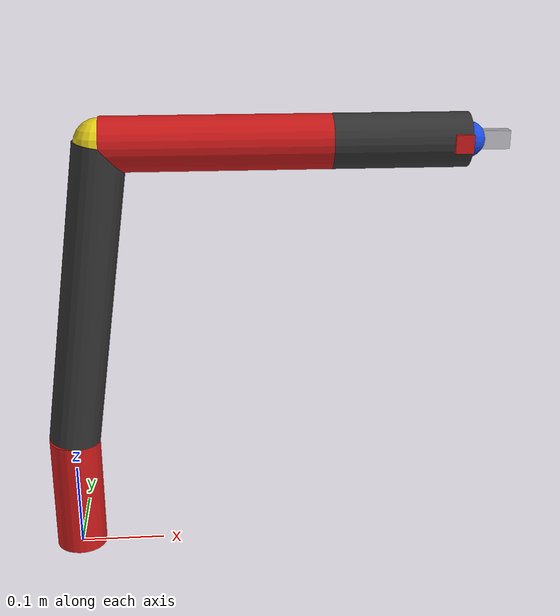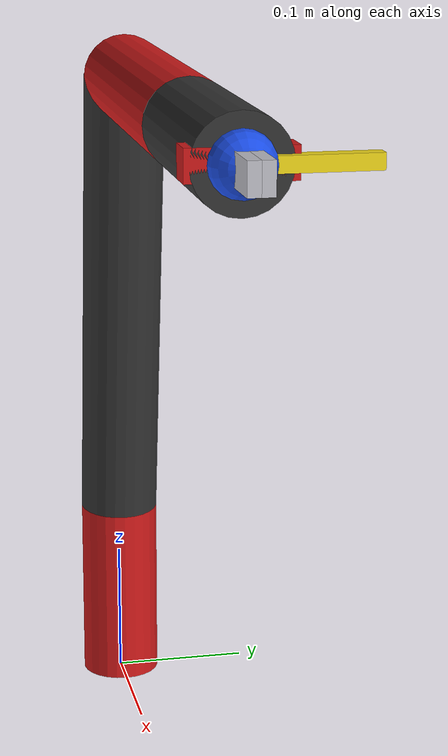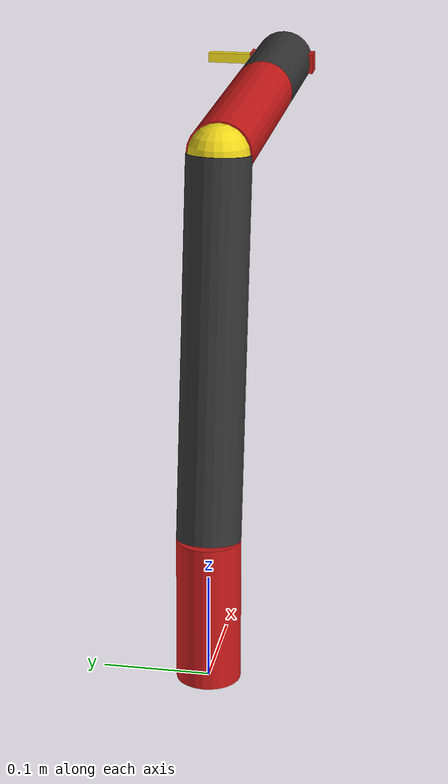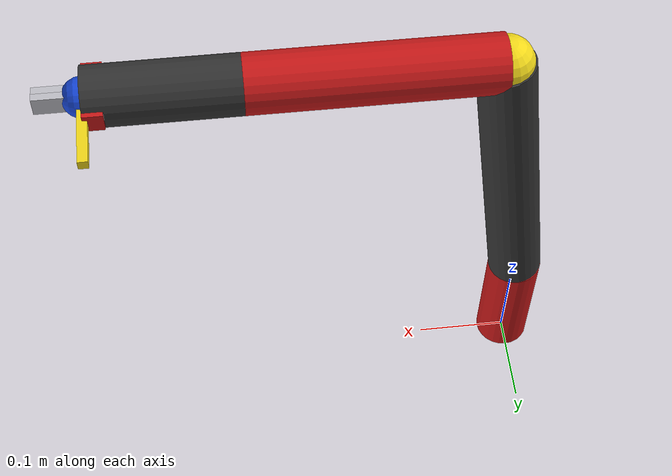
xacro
<?xml version="1.0"?>
<robot xmlns:xacro="http://www.ros.org/wiki/xacro" name="qarm">

    <xacro:property name="L1" value="0.14" />   <!-- base (ground) to shoulder axis -->
    <xacro:property name="L2" value="0.35" />   <!-- upper arm, ALONG the shoulder axis direction -->
    <xacro:property name="L3" value="0.05" />   <!-- upper arm, PERPENDICULAR (the elbow kink) -->
    <xacro:property name="L4" value="0.25" />   <!-- forearm: elbow axis to wrist axis -->
    <xacro:property name="L5" value="0.15" />   <!-- wrist axis to end_effector reference point -->

    <xacro:property name="L_gripper" value="0.046447" />

    <xacro:property name="finger_travel"       value="0.02" />
    <xacro:property name="finger_thickness"    value="0.008" />
    <xacro:property name="finger_width"        value="0.02" />
    <xacro:property name="gripper_stroke_time" value="1.0" />

    <xacro:property name="lambda_1" value="${L1}" />                  <!-- base -> shoulder axis -->
    <xacro:property name="lambda_2" value="${sqrt(L2*L2 + L3*L3)}" /> <!-- shoulder -> elbow axis -->
    <xacro:property name="lambda_3" value="${L4}" />                  <!-- elbow -> wrist axis -->
    <xacro:property name="lambda_4" value="${L5}" />                  <!-- wrist -> end_effector -->
    <xacro:property name="beta"     value="${atan2(L3, L2)}" />

    <xacro:property name="deg" value="${pi / 180.0}" />

    <xacro:property name="q1_min" value="${-170 * deg}" />
    <xacro:property name="q1_max" value="${ 170 * deg}" />
    <xacro:property name="q2_min" value="${ -85 * deg}" />
    <xacro:property name="q2_max" value="${  85 * deg}" />
    <xacro:property name="q3_min" value="${ -95 * deg}" />
    <xacro:property name="q3_max" value="${  75 * deg}" />
    <xacro:property name="q4_min" value="${-160 * deg}" />
    <xacro:property name="q4_max" value="${ 160 * deg}" />

    <xacro:property name="vel_max"    value="${90 * deg}" />  <!-- pi/2 rad/s, Table 7 -->
    <xacro:property name="effort_max" value="10.0" />         <!-- placeholder, not from datasheet -->

    <!-- Cosmetic cylinder radius for arm links (does not affect kinematics) -->
    <xacro:property name="link_radius" value="0.03" />

    <!-- ============================================================
         MATERIALS
         ============================================================ -->
    <material name="dark_gray"><color rgba="0.2 0.2 0.2 1.0"/></material>
    <material name="red">      <color rgba="0.8 0.1 0.1 1.0"/></material>
    <material name="blue">     <color rgba="0.1 0.3 0.9 1.0"/></material>
    <material name="yellow">   <color rgba="0.95 0.85 0.1 1.0"/></material>
    <material name="silver">   <color rgba="0.75 0.75 0.78 1.0"/></material>

    <link name="base_link"/>

    <link name="link_1">
        <visual>
            <geometry><cylinder radius="${link_radius}" length="${L1}"/></geometry>
            <origin xyz="0 0 ${L1/2}" rpy="0 0 0"/>
            <material name="red"/>
        </visual>
    </link>

    <joint name="joint_1" type="revolute">
        <parent link="base_link"/>
        <child  link="link_1"/>
        <origin xyz="0 0 0" rpy="0 0 0"/>
        <axis xyz="0 0 1"/>
        <limit lower="${q1_min}" upper="${q1_max}"
               effort="${effort_max}" velocity="${vel_max}"/>
    </joint>

    <link name="link_2">
        <visual>
            <geometry><cylinder radius="${link_radius}" length="${lambda_2}"/></geometry>
            <origin xyz="${L3/2} 0 ${L2/2}" rpy="0 ${beta} 0"/>
            <material name="dark_gray"/>
        </visual>
        <!-- Marker at the elbow so the kink is visible -->
        <visual>
            <geometry><sphere radius="${link_radius * 0.95}"/></geometry>
            <origin xyz="${L3} 0 ${L2}" rpy="0 0 0"/>
            <material name="yellow"/>
        </visual>
    </link>

    <joint name="joint_2" type="revolute">
        <parent link="link_1"/>
        <child  link="link_2"/>
        <origin xyz="0 0 ${L1}" rpy="0 0 0"/>
        <axis xyz="0 1 0"/>
        <limit lower="${q2_min}" upper="${q2_max}"
               effort="${effort_max}" velocity="${vel_max}"/>
    </joint>

    <link name="link_3">
        <visual>
            <geometry><cylinder radius="${link_radius}" length="${L4}"/></geometry>
            <origin xyz="0 0 ${L4/2}" rpy="0 0 0"/>
            <material name="red"/>
        </visual>
    </link>

    <joint name="joint_3" type="revolute">
        <parent link="link_2"/>
        <child  link="link_3"/>
        <origin xyz="${L3} 0 ${L2}" rpy="0 ${pi / 2} 0"/>
        <axis xyz="0 1 0"/>
        <limit lower="${q3_min}" upper="${q3_max}"
               effort="${effort_max}" velocity="${vel_max}"/>
    </joint>

    <link name="link_4">
        <visual>
            <geometry><cylinder radius="${link_radius}" length="${L5}"/></geometry>
            <origin xyz="0 0 ${L5/2}" rpy="0 0 0"/>
            <material name="dark_gray"/>
        </visual>
        <!-- Gripper palm: wide enough to carry both fingers fully open -->
        <visual>
            <geometry>
                <box size="${finger_width} ${2 * (finger_travel + finger_thickness) + 0.01} 0.02"/>
            </geometry>
            <origin xyz="0 0 ${L5 - 0.01}" rpy="0 0 0"/>
            <material name="red"/>
        </visual>
    </link>

    <joint name="joint_4" type="revolute">
        <parent link="link_3"/>
        <child  link="link_4"/>
        <origin xyz="0 0 ${L4}" rpy="0 0 0"/>
        <axis xyz="0 0 1"/>
        <limit lower="${q4_min}" upper="${q4_max}"
               effort="${effort_max}" velocity="${vel_max}"/>
    </joint>

    <link name="end_effector">
        <!-- Sphere ON the axis -->
        <visual>
            <geometry><sphere radius="0.02"/></geometry>
            <material name="blue"/>
        </visual>
        <!-- Bar OFF the axis so joint_4 rotation is visually obvious -->
        <visual>
            <geometry><box size="0.01 0.08 0.01"/></geometry>
            <origin xyz="0 0.04 0" rpy="0 0 0"/>
            <material name="yellow"/>
        </visual>
    </link>

    <joint name="tool_tip" type="fixed">
        <parent link="link_4"/>
        <child  link="end_effector"/>
        <origin xyz="0 0 ${L5}" rpy="0 0 0"/>
    </joint>

    <link name="gripper_tip"/>

    <joint name="gripper_tip_joint" type="fixed">
        <parent link="end_effector"/>
        <child  link="gripper_tip"/>
        <origin xyz="0 0 ${L_gripper}" rpy="0 0 0"/>
    </joint>

    <link name="finger_left">
        <visual>
            <geometry><box size="${finger_width} ${finger_thickness} ${L_gripper}"/></geometry>
            <origin xyz="0 0 ${L_gripper / 2}" rpy="0 0 0"/>
            <material name="silver"/>
        </visual>
    </link>

    <joint name="finger_left_joint" type="prismatic">
        <parent link="end_effector"/>
        <child  link="finger_left"/>
        <origin xyz="0 ${finger_thickness / 2} 0" rpy="0 0 0"/>
        <axis xyz="0 1 0"/>
        <limit lower="0.0" upper="${finger_travel}"
               effort="${effort_max}" velocity="${finger_travel / gripper_stroke_time}"/>
    </joint>

    <link name="finger_right">
        <visual>
            <geometry><box size="${finger_width} ${finger_thickness} ${L_gripper}"/></geometry>
            <origin xyz="0 0 ${L_gripper / 2}" rpy="0 0 0"/>
            <material name="silver"/>
        </visual>
    </link>

    <joint name="finger_right_joint" type="prismatic">
        <parent link="end_effector"/>
        <child  link="finger_right"/>
        <origin xyz="0 ${-finger_thickness / 2} 0" rpy="0 0 0"/>
        <axis xyz="0 -1 0"/>
        <limit lower="0.0" upper="${finger_travel}"
               effort="${effort_max}" velocity="${finger_travel / gripper_stroke_time}"/>
        <mimic joint="finger_left_joint" multiplier="1.0" offset="0.0"/>
    </joint>

</robot>
